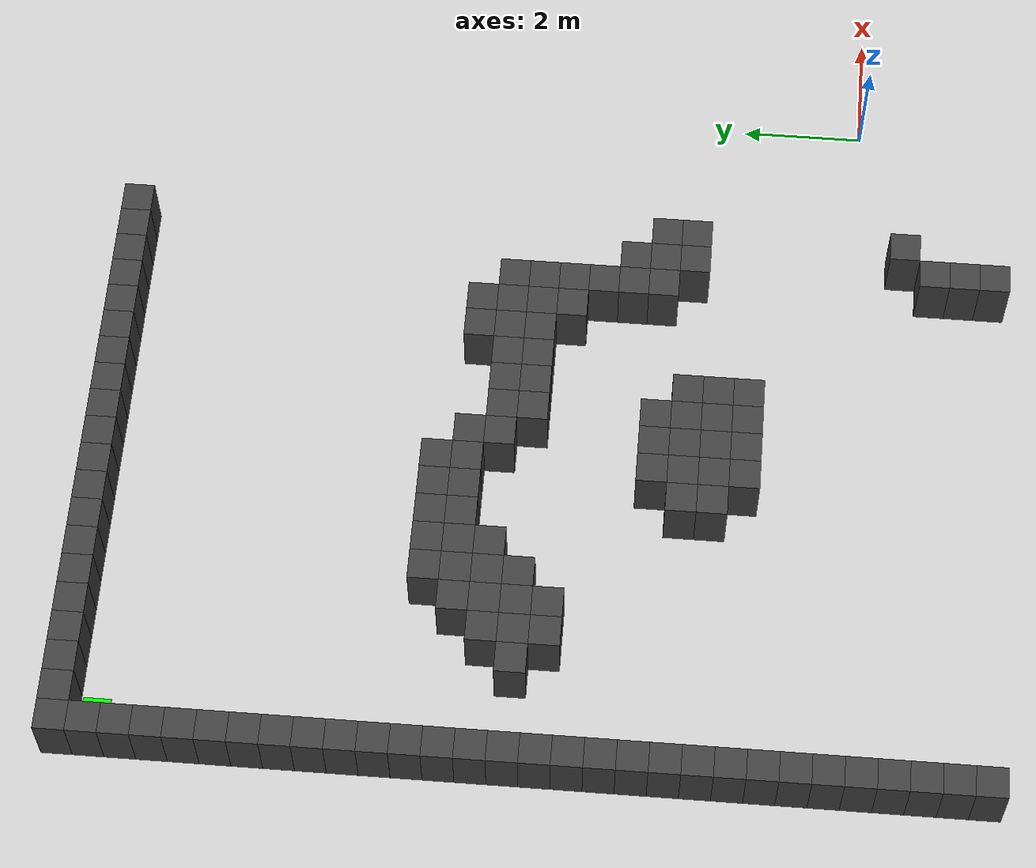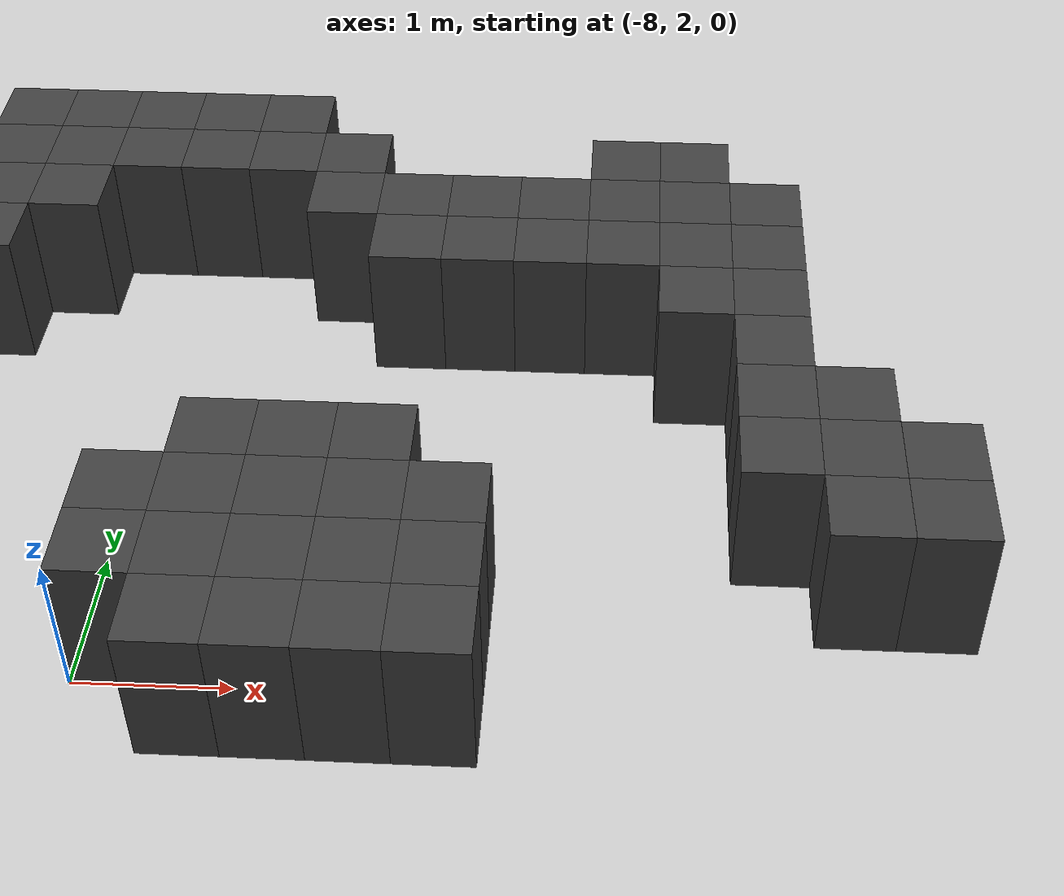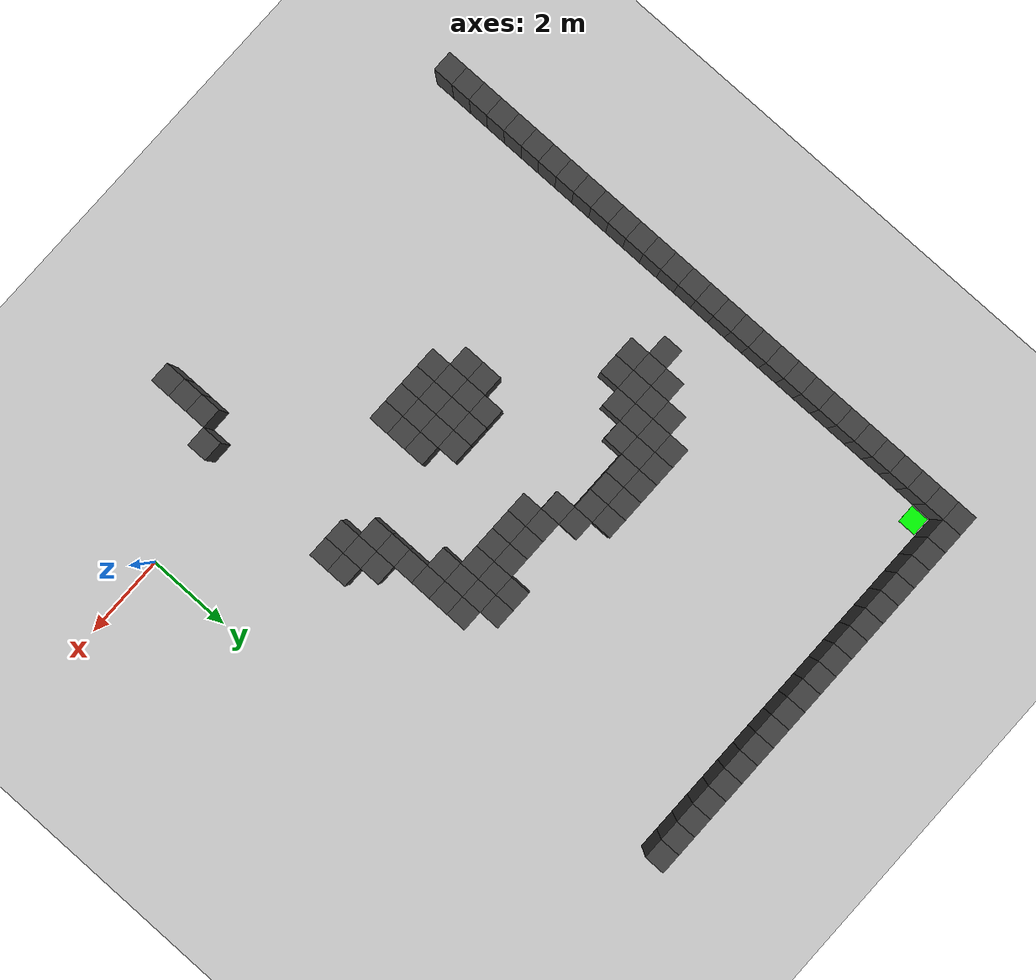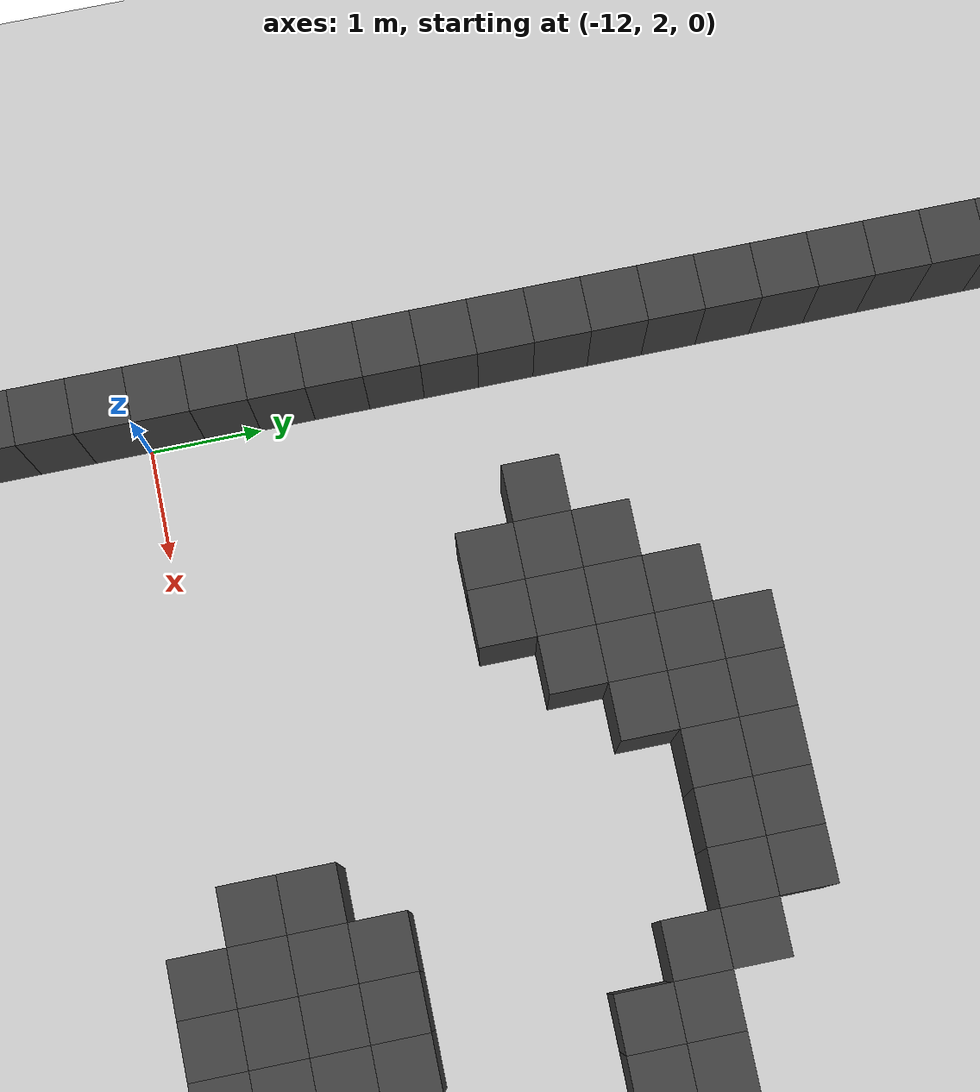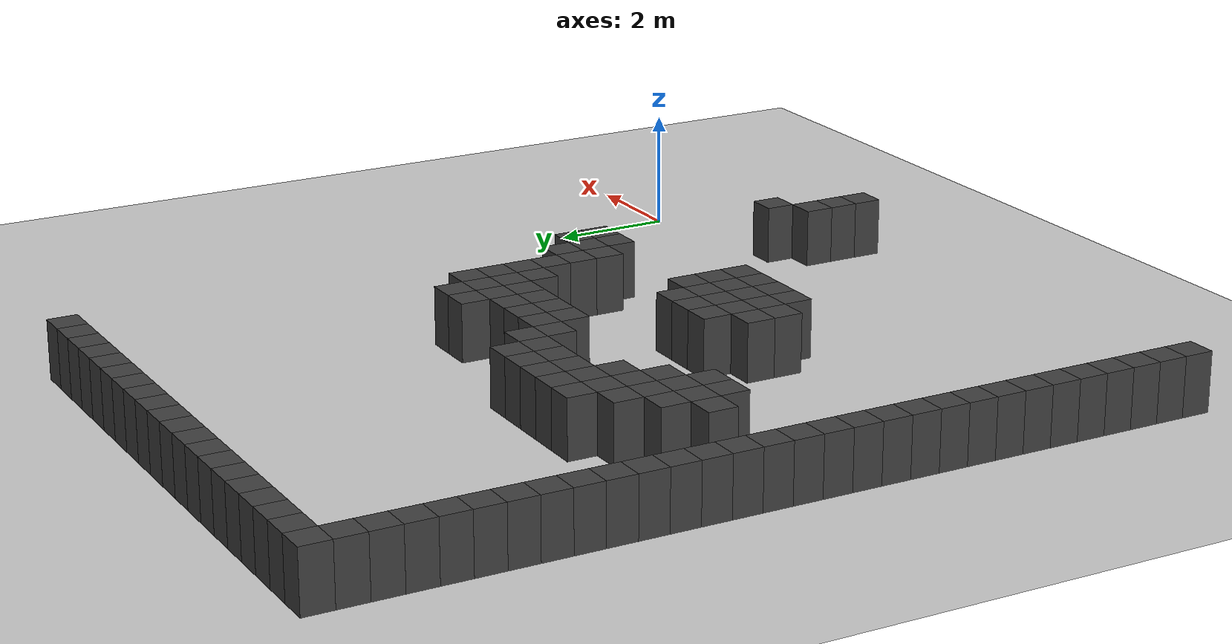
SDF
<sdf version="1.7">
 <world name="map_6610">
  <model name="ground_plane">
   <static>true</static>
   <link name="link">
    <collision name="collision">
     <geometry><plane><normal>0 0 1</normal><size>200 200</size></plane></geometry>
    </collision>
    <visual name="visual">
     <geometry><plane><normal>0 0 1</normal><size>200 200</size></plane></geometry>
     <material><ambient>0.8 0.8 0.8 1</ambient><diffuse>0.8 0.8 0.8 1</diffuse></material>
    </visual>
   </link>
  </model>
  <model name="maze_environment">
   <static>true</static>
   <link name="wall_0">
    <pose>-12.250 12.250 0.500 0 0 0</pose>
    <collision name="col"><geometry><box><size>0.5 0.5 1.0</size></box></geometry></collision>
    <visual name="vis">
     <geometry><box><size>0.5 0.5 1.0</size></box></geometry>
     <material><ambient>0.15 0.15 0.15 1</ambient><diffuse>0.25 0.25 0.25 1</diffuse></material>
    </visual>
   </link>
   <link name="wall_1">
    <pose>-11.750 12.250 0.500 0 0 0</pose>
    <collision name="col"><geometry><box><size>0.5 0.5 1.0</size></box></geometry></collision>
    <visual name="vis">
     <geometry><box><size>0.5 0.5 1.0</size></box></geometry>
     <material><ambient>0.15 0.15 0.15 1</ambient><diffuse>0.25 0.25 0.25 1</diffuse></material>
    </visual>
   </link>
   <link name="wall_2">
    <pose>-11.250 12.250 0.500 0 0 0</pose>
    <collision name="col"><geometry><box><size>0.5 0.5 1.0</size></box></geometry></collision>
    <visual name="vis">
     <geometry><box><size>0.5 0.5 1.0</size></box></geometry>
     <material><ambient>0.15 0.15 0.15 1</ambient><diffuse>0.25 0.25 0.25 1</diffuse></material>
    </visual>
   </link>
   <link name="wall_3">
    <pose>-10.750 12.250 0.500 0 0 0</pose>
    <collision name="col"><geometry><box><size>0.5 0.5 1.0</size></box></geometry></collision>
    <visual name="vis">
     <geometry><box><size>0.5 0.5 1.0</size></box></geometry>
     <material><ambient>0.15 0.15 0.15 1</ambient><diffuse>0.25 0.25 0.25 1</diffuse></material>
    </visual>
   </link>
   <link name="wall_4">
    <pose>-10.250 12.250 0.500 0 0 0</pose>
    <collision name="col"><geometry><box><size>0.5 0.5 1.0</size></box></geometry></collision>
    <visual name="vis">
     <geometry><box><size>0.5 0.5 1.0</size></box></geometry>
     <material><ambient>0.15 0.15 0.15 1</ambient><diffuse>0.25 0.25 0.25 1</diffuse></material>
    </visual>
   </link>
   <link name="wall_5">
    <pose>-9.750 12.250 0.500 0 0 0</pose>
    <collision name="col"><geometry><box><size>0.5 0.5 1.0</size></box></geometry></collision>
    <visual name="vis">
     <geometry><box><size>0.5 0.5 1.0</size></box></geometry>
     <material><ambient>0.15 0.15 0.15 1</ambient><diffuse>0.25 0.25 0.25 1</diffuse></material>
    </visual>
   </link>
   <link name="wall_6">
    <pose>-9.250 12.250 0.500 0 0 0</pose>
    <collision name="col"><geometry><box><size>0.5 0.5 1.0</size></box></geometry></collision>
    <visual name="vis">
     <geometry><box><size>0.5 0.5 1.0</size></box></geometry>
     <material><ambient>0.15 0.15 0.15 1</ambient><diffuse>0.25 0.25 0.25 1</diffuse></material>
    </visual>
   </link>
   <link name="wall_7">
    <pose>-8.750 12.250 0.500 0 0 0</pose>
    <collision name="col"><geometry><box><size>0.5 0.5 1.0</size></box></geometry></collision>
    <visual name="vis">
     <geometry><box><size>0.5 0.5 1.0</size></box></geometry>
     <material><ambient>0.15 0.15 0.15 1</ambient><diffuse>0.25 0.25 0.25 1</diffuse></material>
    </visual>
   </link>
   <link name="wall_8">
    <pose>-8.250 12.250 0.500 0 0 0</pose>
    <collision name="col"><geometry><box><size>0.5 0.5 1.0</size></box></geometry></collision>
    <visual name="vis">
     <geometry><box><size>0.5 0.5 1.0</size></box></geometry>
     <material><ambient>0.15 0.15 0.15 1</ambient><diffuse>0.25 0.25 0.25 1</diffuse></material>
    </visual>
   </link>
   <link name="wall_9">
    <pose>-7.750 12.250 0.500 0 0 0</pose>
    <collision name="col"><geometry><box><size>0.5 0.5 1.0</size></box></geometry></collision>
    <visual name="vis">
     <geometry><box><size>0.5 0.5 1.0</size></box></geometry>
     <material><ambient>0.15 0.15 0.15 1</ambient><diffuse>0.25 0.25 0.25 1</diffuse></material>
    </visual>
   </link>
   <link name="wall_10">
    <pose>-7.250 12.250 0.500 0 0 0</pose>
    <collision name="col"><geometry><box><size>0.5 0.5 1.0</size></box></geometry></collision>
    <visual name="vis">
     <geometry><box><size>0.5 0.5 1.0</size></box></geometry>
     <material><ambient>0.15 0.15 0.15 1</ambient><diffuse>0.25 0.25 0.25 1</diffuse></material>
    </visual>
   </link>
   <link name="wall_11">
    <pose>-6.750 12.250 0.500 0 0 0</pose>
    <collision name="col"><geometry><box><size>0.5 0.5 1.0</size></box></geometry></collision>
    <visual name="vis">
     <geometry><box><size>0.5 0.5 1.0</size></box></geometry>
     <material><ambient>0.15 0.15 0.15 1</ambient><diffuse>0.25 0.25 0.25 1</diffuse></material>
    </visual>
   </link>
   <link name="wall_12">
    <pose>-6.250 12.250 0.500 0 0 0</pose>
    <collision name="col"><geometry><box><size>0.5 0.5 1.0</size></box></geometry></collision>
    <visual name="vis">
     <geometry><box><size>0.5 0.5 1.0</size></box></geometry>
     <material><ambient>0.15 0.15 0.15 1</ambient><diffuse>0.25 0.25 0.25 1</diffuse></material>
    </visual>
   </link>
   <link name="wall_13">
    <pose>-5.750 12.250 0.500 0 0 0</pose>
    <collision name="col"><geometry><box><size>0.5 0.5 1.0</size></box></geometry></collision>
    <visual name="vis">
     <geometry><box><size>0.5 0.5 1.0</size></box></geometry>
     <material><ambient>0.15 0.15 0.15 1</ambient><diffuse>0.25 0.25 0.25 1</diffuse></material>
    </visual>
   </link>
   <link name="wall_14">
    <pose>-5.250 12.250 0.500 0 0 0</pose>
    <collision name="col"><geometry><box><size>0.5 0.5 1.0</size></box></geometry></collision>
    <visual name="vis">
     <geometry><box><size>0.5 0.5 1.0</size></box></geometry>
     <material><ambient>0.15 0.15 0.15 1</ambient><diffuse>0.25 0.25 0.25 1</diffuse></material>
    </visual>
   </link>
   <link name="wall_15">
    <pose>-4.750 12.250 0.500 0 0 0</pose>
    <collision name="col"><geometry><box><size>0.5 0.5 1.0</size></box></geometry></collision>
    <visual name="vis">
     <geometry><box><size>0.5 0.5 1.0</size></box></geometry>
     <material><ambient>0.15 0.15 0.15 1</ambient><diffuse>0.25 0.25 0.25 1</diffuse></material>
    </visual>
   </link>
   <link name="wall_16">
    <pose>-4.250 12.250 0.500 0 0 0</pose>
    <collision name="col"><geometry><box><size>0.5 0.5 1.0</size></box></geometry></collision>
    <visual name="vis">
     <geometry><box><size>0.5 0.5 1.0</size></box></geometry>
     <material><ambient>0.15 0.15 0.15 1</ambient><diffuse>0.25 0.25 0.25 1</diffuse></material>
    </visual>
   </link>
   <link name="wall_17">
    <pose>-3.750 12.250 0.500 0 0 0</pose>
    <collision name="col"><geometry><box><size>0.5 0.5 1.0</size></box></geometry></collision>
    <visual name="vis">
     <geometry><box><size>0.5 0.5 1.0</size></box></geometry>
     <material><ambient>0.15 0.15 0.15 1</ambient><diffuse>0.25 0.25 0.25 1</diffuse></material>
    </visual>
   </link>
   <link name="wall_18">
    <pose>-3.250 12.250 0.500 0 0 0</pose>
    <collision name="col"><geometry><box><size>0.5 0.5 1.0</size></box></geometry></collision>
    <visual name="vis">
     <geometry><box><size>0.5 0.5 1.0</size></box></geometry>
     <material><ambient>0.15 0.15 0.15 1</ambient><diffuse>0.25 0.25 0.25 1</diffuse></material>
    </visual>
   </link>
   <link name="wall_19">
    <pose>-2.750 12.250 0.500 0 0 0</pose>
    <collision name="col"><geometry><box><size>0.5 0.5 1.0</size></box></geometry></collision>
    <visual name="vis">
     <geometry><box><size>0.5 0.5 1.0</size></box></geometry>
     <material><ambient>0.15 0.15 0.15 1</ambient><diffuse>0.25 0.25 0.25 1</diffuse></material>
    </visual>
   </link>
   <link name="wall_50">
    <pose>-12.250 11.750 0.500 0 0 0</pose>
    <collision name="col"><geometry><box><size>0.5 0.5 1.0</size></box></geometry></collision>
    <visual name="vis">
     <geometry><box><size>0.5 0.5 1.0</size></box></geometry>
     <material><ambient>0.15 0.15 0.15 1</ambient><diffuse>0.25 0.25 0.25 1</diffuse></material>
    </visual>
   </link>
   <link name="wall_66">
    <pose>-12.250 11.250 0.500 0 0 0</pose>
    <collision name="col"><geometry><box><size>0.5 0.5 1.0</size></box></geometry></collision>
    <visual name="vis">
     <geometry><box><size>0.5 0.5 1.0</size></box></geometry>
     <material><ambient>0.15 0.15 0.15 1</ambient><diffuse>0.25 0.25 0.25 1</diffuse></material>
    </visual>
   </link>
   <link name="wall_74">
    <pose>-12.250 10.750 0.500 0 0 0</pose>
    <collision name="col"><geometry><box><size>0.5 0.5 1.0</size></box></geometry></collision>
    <visual name="vis">
     <geometry><box><size>0.5 0.5 1.0</size></box></geometry>
     <material><ambient>0.15 0.15 0.15 1</ambient><diffuse>0.25 0.25 0.25 1</diffuse></material>
    </visual>
   </link>
   <link name="wall_80">
    <pose>-12.250 10.250 0.500 0 0 0</pose>
    <collision name="col"><geometry><box><size>0.5 0.5 1.0</size></box></geometry></collision>
    <visual name="vis">
     <geometry><box><size>0.5 0.5 1.0</size></box></geometry>
     <material><ambient>0.15 0.15 0.15 1</ambient><diffuse>0.25 0.25 0.25 1</diffuse></material>
    </visual>
   </link>
   <link name="wall_87">
    <pose>-12.250 9.750 0.500 0 0 0</pose>
    <collision name="col"><geometry><box><size>0.5 0.5 1.0</size></box></geometry></collision>
    <visual name="vis">
     <geometry><box><size>0.5 0.5 1.0</size></box></geometry>
     <material><ambient>0.15 0.15 0.15 1</ambient><diffuse>0.25 0.25 0.25 1</diffuse></material>
    </visual>
   </link>
   <link name="wall_94">
    <pose>-12.250 9.250 0.500 0 0 0</pose>
    <collision name="col"><geometry><box><size>0.5 0.5 1.0</size></box></geometry></collision>
    <visual name="vis">
     <geometry><box><size>0.5 0.5 1.0</size></box></geometry>
     <material><ambient>0.15 0.15 0.15 1</ambient><diffuse>0.25 0.25 0.25 1</diffuse></material>
    </visual>
   </link>
   <link name="wall_103">
    <pose>-12.250 8.750 0.500 0 0 0</pose>
    <collision name="col"><geometry><box><size>0.5 0.5 1.0</size></box></geometry></collision>
    <visual name="vis">
     <geometry><box><size>0.5 0.5 1.0</size></box></geometry>
     <material><ambient>0.15 0.15 0.15 1</ambient><diffuse>0.25 0.25 0.25 1</diffuse></material>
    </visual>
   </link>
   <link name="wall_112">
    <pose>-12.250 8.250 0.500 0 0 0</pose>
    <collision name="col"><geometry><box><size>0.5 0.5 1.0</size></box></geometry></collision>
    <visual name="vis">
     <geometry><box><size>0.5 0.5 1.0</size></box></geometry>
     <material><ambient>0.15 0.15 0.15 1</ambient><diffuse>0.25 0.25 0.25 1</diffuse></material>
    </visual>
   </link>
   <link name="wall_118">
    <pose>-12.250 7.750 0.500 0 0 0</pose>
    <collision name="col"><geometry><box><size>0.5 0.5 1.0</size></box></geometry></collision>
    <visual name="vis">
     <geometry><box><size>0.5 0.5 1.0</size></box></geometry>
     <material><ambient>0.15 0.15 0.15 1</ambient><diffuse>0.25 0.25 0.25 1</diffuse></material>
    </visual>
   </link>
   <link name="wall_123">
    <pose>-12.250 7.250 0.500 0 0 0</pose>
    <collision name="col"><geometry><box><size>0.5 0.5 1.0</size></box></geometry></collision>
    <visual name="vis">
     <geometry><box><size>0.5 0.5 1.0</size></box></geometry>
     <material><ambient>0.15 0.15 0.15 1</ambient><diffuse>0.25 0.25 0.25 1</diffuse></material>
    </visual>
   </link>
   <link name="wall_125">
    <pose>-12.250 6.750 0.500 0 0 0</pose>
    <collision name="col"><geometry><box><size>0.5 0.5 1.0</size></box></geometry></collision>
    <visual name="vis">
     <geometry><box><size>0.5 0.5 1.0</size></box></geometry>
     <material><ambient>0.15 0.15 0.15 1</ambient><diffuse>0.25 0.25 0.25 1</diffuse></material>
    </visual>
   </link>
   <link name="wall_126">
    <pose>-9.250 6.750 0.500 0 0 0</pose>
    <collision name="col"><geometry><box><size>0.5 0.5 1.0</size></box></geometry></collision>
    <visual name="vis">
     <geometry><box><size>0.5 0.5 1.0</size></box></geometry>
     <material><ambient>0.15 0.15 0.15 1</ambient><diffuse>0.25 0.25 0.25 1</diffuse></material>
    </visual>
   </link>
   <link name="wall_127">
    <pose>-8.750 6.750 0.500 0 0 0</pose>
    <collision name="col"><geometry><box><size>0.5 0.5 1.0</size></box></geometry></collision>
    <visual name="vis">
     <geometry><box><size>0.5 0.5 1.0</size></box></geometry>
     <material><ambient>0.15 0.15 0.15 1</ambient><diffuse>0.25 0.25 0.25 1</diffuse></material>
    </visual>
   </link>
   <link name="wall_128">
    <pose>-8.250 6.750 0.500 0 0 0</pose>
    <collision name="col"><geometry><box><size>0.5 0.5 1.0</size></box></geometry></collision>
    <visual name="vis">
     <geometry><box><size>0.5 0.5 1.0</size></box></geometry>
     <material><ambient>0.15 0.15 0.15 1</ambient><diffuse>0.25 0.25 0.25 1</diffuse></material>
    </visual>
   </link>
   <link name="wall_129">
    <pose>-7.750 6.750 0.500 0 0 0</pose>
    <collision name="col"><geometry><box><size>0.5 0.5 1.0</size></box></geometry></collision>
    <visual name="vis">
     <geometry><box><size>0.5 0.5 1.0</size></box></geometry>
     <material><ambient>0.15 0.15 0.15 1</ambient><diffuse>0.25 0.25 0.25 1</diffuse></material>
    </visual>
   </link>
   <link name="wall_130">
    <pose>-7.250 6.750 0.500 0 0 0</pose>
    <collision name="col"><geometry><box><size>0.5 0.5 1.0</size></box></geometry></collision>
    <visual name="vis">
     <geometry><box><size>0.5 0.5 1.0</size></box></geometry>
     <material><ambient>0.15 0.15 0.15 1</ambient><diffuse>0.25 0.25 0.25 1</diffuse></material>
    </visual>
   </link>
   <link name="wall_132">
    <pose>-12.250 6.250 0.500 0 0 0</pose>
    <collision name="col"><geometry><box><size>0.5 0.5 1.0</size></box></geometry></collision>
    <visual name="vis">
     <geometry><box><size>0.5 0.5 1.0</size></box></geometry>
     <material><ambient>0.15 0.15 0.15 1</ambient><diffuse>0.25 0.25 0.25 1</diffuse></material>
    </visual>
   </link>
   <link name="wall_133">
    <pose>-9.750 6.250 0.500 0 0 0</pose>
    <collision name="col"><geometry><box><size>0.5 0.5 1.0</size></box></geometry></collision>
    <visual name="vis">
     <geometry><box><size>0.5 0.5 1.0</size></box></geometry>
     <material><ambient>0.15 0.15 0.15 1</ambient><diffuse>0.25 0.25 0.25 1</diffuse></material>
    </visual>
   </link>
   <link name="wall_134">
    <pose>-9.250 6.250 0.500 0 0 0</pose>
    <collision name="col"><geometry><box><size>0.5 0.5 1.0</size></box></geometry></collision>
    <visual name="vis">
     <geometry><box><size>0.5 0.5 1.0</size></box></geometry>
     <material><ambient>0.15 0.15 0.15 1</ambient><diffuse>0.25 0.25 0.25 1</diffuse></material>
    </visual>
   </link>
   <link name="wall_135">
    <pose>-8.750 6.250 0.500 0 0 0</pose>
    <collision name="col"><geometry><box><size>0.5 0.5 1.0</size></box></geometry></collision>
    <visual name="vis">
     <geometry><box><size>0.5 0.5 1.0</size></box></geometry>
     <material><ambient>0.15 0.15 0.15 1</ambient><diffuse>0.25 0.25 0.25 1</diffuse></material>
    </visual>
   </link>
   <link name="wall_136">
    <pose>-8.250 6.250 0.500 0 0 0</pose>
    <collision name="col"><geometry><box><size>0.5 0.5 1.0</size></box></geometry></collision>
    <visual name="vis">
     <geometry><box><size>0.5 0.5 1.0</size></box></geometry>
     <material><ambient>0.15 0.15 0.15 1</ambient><diffuse>0.25 0.25 0.25 1</diffuse></material>
    </visual>
   </link>
   <link name="wall_137">
    <pose>-7.750 6.250 0.500 0 0 0</pose>
    <collision name="col"><geometry><box><size>0.5 0.5 1.0</size></box></geometry></collision>
    <visual name="vis">
     <geometry><box><size>0.5 0.5 1.0</size></box></geometry>
     <material><ambient>0.15 0.15 0.15 1</ambient><diffuse>0.25 0.25 0.25 1</diffuse></material>
    </visual>
   </link>
   <link name="wall_138">
    <pose>-7.250 6.250 0.500 0 0 0</pose>
    <collision name="col"><geometry><box><size>0.5 0.5 1.0</size></box></geometry></collision>
    <visual name="vis">
     <geometry><box><size>0.5 0.5 1.0</size></box></geometry>
     <material><ambient>0.15 0.15 0.15 1</ambient><diffuse>0.25 0.25 0.25 1</diffuse></material>
    </visual>
   </link>
   <link name="wall_139">
    <pose>-6.750 6.250 0.500 0 0 0</pose>
    <collision name="col"><geometry><box><size>0.5 0.5 1.0</size></box></geometry></collision>
    <visual name="vis">
     <geometry><box><size>0.5 0.5 1.0</size></box></geometry>
     <material><ambient>0.15 0.15 0.15 1</ambient><diffuse>0.25 0.25 0.25 1</diffuse></material>
    </visual>
   </link>
   <link name="wall_140">
    <pose>-4.750 6.250 0.500 0 0 0</pose>
    <collision name="col"><geometry><box><size>0.5 0.5 1.0</size></box></geometry></collision>
    <visual name="vis">
     <geometry><box><size>0.5 0.5 1.0</size></box></geometry>
     <material><ambient>0.15 0.15 0.15 1</ambient><diffuse>0.25 0.25 0.25 1</diffuse></material>
    </visual>
   </link>
   <link name="wall_141">
    <pose>-4.250 6.250 0.500 0 0 0</pose>
    <collision name="col"><geometry><box><size>0.5 0.5 1.0</size></box></geometry></collision>
    <visual name="vis">
     <geometry><box><size>0.5 0.5 1.0</size></box></geometry>
     <material><ambient>0.15 0.15 0.15 1</ambient><diffuse>0.25 0.25 0.25 1</diffuse></material>
    </visual>
   </link>
   <link name="wall_146">
    <pose>-12.250 5.750 0.500 0 0 0</pose>
    <collision name="col"><geometry><box><size>0.5 0.5 1.0</size></box></geometry></collision>
    <visual name="vis">
     <geometry><box><size>0.5 0.5 1.0</size></box></geometry>
     <material><ambient>0.15 0.15 0.15 1</ambient><diffuse>0.25 0.25 0.25 1</diffuse></material>
    </visual>
   </link>
   <link name="wall_147">
    <pose>-10.250 5.750 0.500 0 0 0</pose>
    <collision name="col"><geometry><box><size>0.5 0.5 1.0</size></box></geometry></collision>
    <visual name="vis">
     <geometry><box><size>0.5 0.5 1.0</size></box></geometry>
     <material><ambient>0.15 0.15 0.15 1</ambient><diffuse>0.25 0.25 0.25 1</diffuse></material>
    </visual>
   </link>
   <link name="wall_148">
    <pose>-9.750 5.750 0.500 0 0 0</pose>
    <collision name="col"><geometry><box><size>0.5 0.5 1.0</size></box></geometry></collision>
    <visual name="vis">
     <geometry><box><size>0.5 0.5 1.0</size></box></geometry>
     <material><ambient>0.15 0.15 0.15 1</ambient><diffuse>0.25 0.25 0.25 1</diffuse></material>
    </visual>
   </link>
   <link name="wall_149">
    <pose>-9.250 5.750 0.500 0 0 0</pose>
    <collision name="col"><geometry><box><size>0.5 0.5 1.0</size></box></geometry></collision>
    <visual name="vis">
     <geometry><box><size>0.5 0.5 1.0</size></box></geometry>
     <material><ambient>0.15 0.15 0.15 1</ambient><diffuse>0.25 0.25 0.25 1</diffuse></material>
    </visual>
   </link>
   <link name="wall_150">
    <pose>-8.750 5.750 0.500 0 0 0</pose>
    <collision name="col"><geometry><box><size>0.5 0.5 1.0</size></box></geometry></collision>
    <visual name="vis">
     <geometry><box><size>0.5 0.5 1.0</size></box></geometry>
     <material><ambient>0.15 0.15 0.15 1</ambient><diffuse>0.25 0.25 0.25 1</diffuse></material>
    </visual>
   </link>
   <link name="wall_151">
    <pose>-6.750 5.750 0.500 0 0 0</pose>
    <collision name="col"><geometry><box><size>0.5 0.5 1.0</size></box></geometry></collision>
    <visual name="vis">
     <geometry><box><size>0.5 0.5 1.0</size></box></geometry>
     <material><ambient>0.15 0.15 0.15 1</ambient><diffuse>0.25 0.25 0.25 1</diffuse></material>
    </visual>
   </link>
   <link name="wall_152">
    <pose>-6.250 5.750 0.500 0 0 0</pose>
    <collision name="col"><geometry><box><size>0.5 0.5 1.0</size></box></geometry></collision>
    <visual name="vis">
     <geometry><box><size>0.5 0.5 1.0</size></box></geometry>
     <material><ambient>0.15 0.15 0.15 1</ambient><diffuse>0.25 0.25 0.25 1</diffuse></material>
    </visual>
   </link>
   <link name="wall_153">
    <pose>-5.750 5.750 0.500 0 0 0</pose>
    <collision name="col"><geometry><box><size>0.5 0.5 1.0</size></box></geometry></collision>
    <visual name="vis">
     <geometry><box><size>0.5 0.5 1.0</size></box></geometry>
     <material><ambient>0.15 0.15 0.15 1</ambient><diffuse>0.25 0.25 0.25 1</diffuse></material>
    </visual>
   </link>
   <link name="wall_154">
    <pose>-5.250 5.750 0.500 0 0 0</pose>
    <collision name="col"><geometry><box><size>0.5 0.5 1.0</size></box></geometry></collision>
    <visual name="vis">
     <geometry><box><size>0.5 0.5 1.0</size></box></geometry>
     <material><ambient>0.15 0.15 0.15 1</ambient><diffuse>0.25 0.25 0.25 1</diffuse></material>
    </visual>
   </link>
   <link name="wall_155">
    <pose>-4.750 5.750 0.500 0 0 0</pose>
    <collision name="col"><geometry><box><size>0.5 0.5 1.0</size></box></geometry></collision>
    <visual name="vis">
     <geometry><box><size>0.5 0.5 1.0</size></box></geometry>
     <material><ambient>0.15 0.15 0.15 1</ambient><diffuse>0.25 0.25 0.25 1</diffuse></material>
    </visual>
   </link>
   <link name="wall_156">
    <pose>-4.250 5.750 0.500 0 0 0</pose>
    <collision name="col"><geometry><box><size>0.5 0.5 1.0</size></box></geometry></collision>
    <visual name="vis">
     <geometry><box><size>0.5 0.5 1.0</size></box></geometry>
     <material><ambient>0.15 0.15 0.15 1</ambient><diffuse>0.25 0.25 0.25 1</diffuse></material>
    </visual>
   </link>
   <link name="wall_157">
    <pose>-3.750 5.750 0.500 0 0 0</pose>
    <collision name="col"><geometry><box><size>0.5 0.5 1.0</size></box></geometry></collision>
    <visual name="vis">
     <geometry><box><size>0.5 0.5 1.0</size></box></geometry>
     <material><ambient>0.15 0.15 0.15 1</ambient><diffuse>0.25 0.25 0.25 1</diffuse></material>
    </visual>
   </link>
   <link name="wall_163">
    <pose>-12.250 5.250 0.500 0 0 0</pose>
    <collision name="col"><geometry><box><size>0.5 0.5 1.0</size></box></geometry></collision>
    <visual name="vis">
     <geometry><box><size>0.5 0.5 1.0</size></box></geometry>
     <material><ambient>0.15 0.15 0.15 1</ambient><diffuse>0.25 0.25 0.25 1</diffuse></material>
    </visual>
   </link>
   <link name="wall_164">
    <pose>-10.750 5.250 0.500 0 0 0</pose>
    <collision name="col"><geometry><box><size>0.5 0.5 1.0</size></box></geometry></collision>
    <visual name="vis">
     <geometry><box><size>0.5 0.5 1.0</size></box></geometry>
     <material><ambient>0.15 0.15 0.15 1</ambient><diffuse>0.25 0.25 0.25 1</diffuse></material>
    </visual>
   </link>
   <link name="wall_165">
    <pose>-10.250 5.250 0.500 0 0 0</pose>
    <collision name="col"><geometry><box><size>0.5 0.5 1.0</size></box></geometry></collision>
    <visual name="vis">
     <geometry><box><size>0.5 0.5 1.0</size></box></geometry>
     <material><ambient>0.15 0.15 0.15 1</ambient><diffuse>0.25 0.25 0.25 1</diffuse></material>
    </visual>
   </link>
   <link name="wall_166">
    <pose>-9.750 5.250 0.500 0 0 0</pose>
    <collision name="col"><geometry><box><size>0.5 0.5 1.0</size></box></geometry></collision>
    <visual name="vis">
     <geometry><box><size>0.5 0.5 1.0</size></box></geometry>
     <material><ambient>0.15 0.15 0.15 1</ambient><diffuse>0.25 0.25 0.25 1</diffuse></material>
    </visual>
   </link>
   <link name="wall_167">
    <pose>-9.250 5.250 0.500 0 0 0</pose>
    <collision name="col"><geometry><box><size>0.5 0.5 1.0</size></box></geometry></collision>
    <visual name="vis">
     <geometry><box><size>0.5 0.5 1.0</size></box></geometry>
     <material><ambient>0.15 0.15 0.15 1</ambient><diffuse>0.25 0.25 0.25 1</diffuse></material>
    </visual>
   </link>
   <link name="wall_168">
    <pose>-6.250 5.250 0.500 0 0 0</pose>
    <collision name="col"><geometry><box><size>0.5 0.5 1.0</size></box></geometry></collision>
    <visual name="vis">
     <geometry><box><size>0.5 0.5 1.0</size></box></geometry>
     <material><ambient>0.15 0.15 0.15 1</ambient><diffuse>0.25 0.25 0.25 1</diffuse></material>
    </visual>
   </link>
   <link name="wall_169">
    <pose>-5.750 5.250 0.500 0 0 0</pose>
    <collision name="col"><geometry><box><size>0.5 0.5 1.0</size></box></geometry></collision>
    <visual name="vis">
     <geometry><box><size>0.5 0.5 1.0</size></box></geometry>
     <material><ambient>0.15 0.15 0.15 1</ambient><diffuse>0.25 0.25 0.25 1</diffuse></material>
    </visual>
   </link>
   <link name="wall_170">
    <pose>-5.250 5.250 0.500 0 0 0</pose>
    <collision name="col"><geometry><box><size>0.5 0.5 1.0</size></box></geometry></collision>
    <visual name="vis">
     <geometry><box><size>0.5 0.5 1.0</size></box></geometry>
     <material><ambient>0.15 0.15 0.15 1</ambient><diffuse>0.25 0.25 0.25 1</diffuse></material>
    </visual>
   </link>
   <link name="wall_171">
    <pose>-4.750 5.250 0.500 0 0 0</pose>
    <collision name="col"><geometry><box><size>0.5 0.5 1.0</size></box></geometry></collision>
    <visual name="vis">
     <geometry><box><size>0.5 0.5 1.0</size></box></geometry>
     <material><ambient>0.15 0.15 0.15 1</ambient><diffuse>0.25 0.25 0.25 1</diffuse></material>
    </visual>
   </link>
   <link name="wall_172">
    <pose>-4.250 5.250 0.500 0 0 0</pose>
    <collision name="col"><geometry><box><size>0.5 0.5 1.0</size></box></geometry></collision>
    <visual name="vis">
     <geometry><box><size>0.5 0.5 1.0</size></box></geometry>
     <material><ambient>0.15 0.15 0.15 1</ambient><diffuse>0.25 0.25 0.25 1</diffuse></material>
    </visual>
   </link>
   <link name="wall_173">
    <pose>-3.750 5.250 0.500 0 0 0</pose>
    <collision name="col"><geometry><box><size>0.5 0.5 1.0</size></box></geometry></collision>
    <visual name="vis">
     <geometry><box><size>0.5 0.5 1.0</size></box></geometry>
     <material><ambient>0.15 0.15 0.15 1</ambient><diffuse>0.25 0.25 0.25 1</diffuse></material>
    </visual>
   </link>
   <link name="wall_179">
    <pose>-12.250 4.750 0.500 0 0 0</pose>
    <collision name="col"><geometry><box><size>0.5 0.5 1.0</size></box></geometry></collision>
    <visual name="vis">
     <geometry><box><size>0.5 0.5 1.0</size></box></geometry>
     <material><ambient>0.15 0.15 0.15 1</ambient><diffuse>0.25 0.25 0.25 1</diffuse></material>
    </visual>
   </link>
   <link name="wall_180">
    <pose>-10.250 4.750 0.500 0 0 0</pose>
    <collision name="col"><geometry><box><size>0.5 0.5 1.0</size></box></geometry></collision>
    <visual name="vis">
     <geometry><box><size>0.5 0.5 1.0</size></box></geometry>
     <material><ambient>0.15 0.15 0.15 1</ambient><diffuse>0.25 0.25 0.25 1</diffuse></material>
    </visual>
   </link>
   <link name="wall_181">
    <pose>-9.750 4.750 0.500 0 0 0</pose>
    <collision name="col"><geometry><box><size>0.5 0.5 1.0</size></box></geometry></collision>
    <visual name="vis">
     <geometry><box><size>0.5 0.5 1.0</size></box></geometry>
     <material><ambient>0.15 0.15 0.15 1</ambient><diffuse>0.25 0.25 0.25 1</diffuse></material>
    </visual>
   </link>
   <link name="wall_182">
    <pose>-4.250 4.750 0.500 0 0 0</pose>
    <collision name="col"><geometry><box><size>0.5 0.5 1.0</size></box></geometry></collision>
    <visual name="vis">
     <geometry><box><size>0.5 0.5 1.0</size></box></geometry>
     <material><ambient>0.15 0.15 0.15 1</ambient><diffuse>0.25 0.25 0.25 1</diffuse></material>
    </visual>
   </link>
   <link name="wall_183">
    <pose>-3.750 4.750 0.500 0 0 0</pose>
    <collision name="col"><geometry><box><size>0.5 0.5 1.0</size></box></geometry></collision>
    <visual name="vis">
     <geometry><box><size>0.5 0.5 1.0</size></box></geometry>
     <material><ambient>0.15 0.15 0.15 1</ambient><diffuse>0.25 0.25 0.25 1</diffuse></material>
    </visual>
   </link>
   <link name="wall_188">
    <pose>-12.250 4.250 0.500 0 0 0</pose>
    <collision name="col"><geometry><box><size>0.5 0.5 1.0</size></box></geometry></collision>
    <visual name="vis">
     <geometry><box><size>0.5 0.5 1.0</size></box></geometry>
     <material><ambient>0.15 0.15 0.15 1</ambient><diffuse>0.25 0.25 0.25 1</diffuse></material>
    </visual>
   </link>
   <link name="wall_189">
    <pose>-3.750 4.250 0.500 0 0 0</pose>
    <collision name="col"><geometry><box><size>0.5 0.5 1.0</size></box></geometry></collision>
    <visual name="vis">
     <geometry><box><size>0.5 0.5 1.0</size></box></geometry>
     <material><ambient>0.15 0.15 0.15 1</ambient><diffuse>0.25 0.25 0.25 1</diffuse></material>
    </visual>
   </link>
   <link name="wall_193">
    <pose>-12.250 3.750 0.500 0 0 0</pose>
    <collision name="col"><geometry><box><size>0.5 0.5 1.0</size></box></geometry></collision>
    <visual name="vis">
     <geometry><box><size>0.5 0.5 1.0</size></box></geometry>
     <material><ambient>0.15 0.15 0.15 1</ambient><diffuse>0.25 0.25 0.25 1</diffuse></material>
    </visual>
   </link>
   <link name="wall_194">
    <pose>-3.750 3.750 0.500 0 0 0</pose>
    <collision name="col"><geometry><box><size>0.5 0.5 1.0</size></box></geometry></collision>
    <visual name="vis">
     <geometry><box><size>0.5 0.5 1.0</size></box></geometry>
     <material><ambient>0.15 0.15 0.15 1</ambient><diffuse>0.25 0.25 0.25 1</diffuse></material>
    </visual>
   </link>
   <link name="wall_195">
    <pose>-3.250 3.750 0.500 0 0 0</pose>
    <collision name="col"><geometry><box><size>0.5 0.5 1.0</size></box></geometry></collision>
    <visual name="vis">
     <geometry><box><size>0.5 0.5 1.0</size></box></geometry>
     <material><ambient>0.15 0.15 0.15 1</ambient><diffuse>0.25 0.25 0.25 1</diffuse></material>
    </visual>
   </link>
   <link name="wall_202">
    <pose>-12.250 3.250 0.500 0 0 0</pose>
    <collision name="col"><geometry><box><size>0.5 0.5 1.0</size></box></geometry></collision>
    <visual name="vis">
     <geometry><box><size>0.5 0.5 1.0</size></box></geometry>
     <material><ambient>0.15 0.15 0.15 1</ambient><diffuse>0.25 0.25 0.25 1</diffuse></material>
    </visual>
   </link>
   <link name="wall_203">
    <pose>-7.250 3.250 0.500 0 0 0</pose>
    <collision name="col"><geometry><box><size>0.5 0.5 1.0</size></box></geometry></collision>
    <visual name="vis">
     <geometry><box><size>0.5 0.5 1.0</size></box></geometry>
     <material><ambient>0.15 0.15 0.15 1</ambient><diffuse>0.25 0.25 0.25 1</diffuse></material>
    </visual>
   </link>
   <link name="wall_204">
    <pose>-6.750 3.250 0.500 0 0 0</pose>
    <collision name="col"><geometry><box><size>0.5 0.5 1.0</size></box></geometry></collision>
    <visual name="vis">
     <geometry><box><size>0.5 0.5 1.0</size></box></geometry>
     <material><ambient>0.15 0.15 0.15 1</ambient><diffuse>0.25 0.25 0.25 1</diffuse></material>
    </visual>
   </link>
   <link name="wall_205">
    <pose>-6.250 3.250 0.500 0 0 0</pose>
    <collision name="col"><geometry><box><size>0.5 0.5 1.0</size></box></geometry></collision>
    <visual name="vis">
     <geometry><box><size>0.5 0.5 1.0</size></box></geometry>
     <material><ambient>0.15 0.15 0.15 1</ambient><diffuse>0.25 0.25 0.25 1</diffuse></material>
    </visual>
   </link>
   <link name="wall_206">
    <pose>-3.750 3.250 0.500 0 0 0</pose>
    <collision name="col"><geometry><box><size>0.5 0.5 1.0</size></box></geometry></collision>
    <visual name="vis">
     <geometry><box><size>0.5 0.5 1.0</size></box></geometry>
     <material><ambient>0.15 0.15 0.15 1</ambient><diffuse>0.25 0.25 0.25 1</diffuse></material>
    </visual>
   </link>
   <link name="wall_207">
    <pose>-3.250 3.250 0.500 0 0 0</pose>
    <collision name="col"><geometry><box><size>0.5 0.5 1.0</size></box></geometry></collision>
    <visual name="vis">
     <geometry><box><size>0.5 0.5 1.0</size></box></geometry>
     <material><ambient>0.15 0.15 0.15 1</ambient><diffuse>0.25 0.25 0.25 1</diffuse></material>
    </visual>
   </link>
   <link name="wall_208">
    <pose>-2.750 3.250 0.500 0 0 0</pose>
    <collision name="col"><geometry><box><size>0.5 0.5 1.0</size></box></geometry></collision>
    <visual name="vis">
     <geometry><box><size>0.5 0.5 1.0</size></box></geometry>
     <material><ambient>0.15 0.15 0.15 1</ambient><diffuse>0.25 0.25 0.25 1</diffuse></material>
    </visual>
   </link>
   <link name="wall_216">
    <pose>-12.250 2.750 0.500 0 0 0</pose>
    <collision name="col"><geometry><box><size>0.5 0.5 1.0</size></box></geometry></collision>
    <visual name="vis">
     <geometry><box><size>0.5 0.5 1.0</size></box></geometry>
     <material><ambient>0.15 0.15 0.15 1</ambient><diffuse>0.25 0.25 0.25 1</diffuse></material>
    </visual>
   </link>
   <link name="wall_217">
    <pose>-7.750 2.750 0.500 0 0 0</pose>
    <collision name="col"><geometry><box><size>0.5 0.5 1.0</size></box></geometry></collision>
    <visual name="vis">
     <geometry><box><size>0.5 0.5 1.0</size></box></geometry>
     <material><ambient>0.15 0.15 0.15 1</ambient><diffuse>0.25 0.25 0.25 1</diffuse></material>
    </visual>
   </link>
   <link name="wall_218">
    <pose>-7.250 2.750 0.500 0 0 0</pose>
    <collision name="col"><geometry><box><size>0.5 0.5 1.0</size></box></geometry></collision>
    <visual name="vis">
     <geometry><box><size>0.5 0.5 1.0</size></box></geometry>
     <material><ambient>0.15 0.15 0.15 1</ambient><diffuse>0.25 0.25 0.25 1</diffuse></material>
    </visual>
   </link>
   <link name="wall_219">
    <pose>-6.750 2.750 0.500 0 0 0</pose>
    <collision name="col"><geometry><box><size>0.5 0.5 1.0</size></box></geometry></collision>
    <visual name="vis">
     <geometry><box><size>0.5 0.5 1.0</size></box></geometry>
     <material><ambient>0.15 0.15 0.15 1</ambient><diffuse>0.25 0.25 0.25 1</diffuse></material>
    </visual>
   </link>
   <link name="wall_220">
    <pose>-6.250 2.750 0.500 0 0 0</pose>
    <collision name="col"><geometry><box><size>0.5 0.5 1.0</size></box></geometry></collision>
    <visual name="vis">
     <geometry><box><size>0.5 0.5 1.0</size></box></geometry>
     <material><ambient>0.15 0.15 0.15 1</ambient><diffuse>0.25 0.25 0.25 1</diffuse></material>
    </visual>
   </link>
   <link name="wall_221">
    <pose>-5.750 2.750 0.500 0 0 0</pose>
    <collision name="col"><geometry><box><size>0.5 0.5 1.0</size></box></geometry></collision>
    <visual name="vis">
     <geometry><box><size>0.5 0.5 1.0</size></box></geometry>
     <material><ambient>0.15 0.15 0.15 1</ambient><diffuse>0.25 0.25 0.25 1</diffuse></material>
    </visual>
   </link>
   <link name="wall_222">
    <pose>-3.250 2.750 0.500 0 0 0</pose>
    <collision name="col"><geometry><box><size>0.5 0.5 1.0</size></box></geometry></collision>
    <visual name="vis">
     <geometry><box><size>0.5 0.5 1.0</size></box></geometry>
     <material><ambient>0.15 0.15 0.15 1</ambient><diffuse>0.25 0.25 0.25 1</diffuse></material>
    </visual>
   </link>
   <link name="wall_223">
    <pose>-2.750 2.750 0.500 0 0 0</pose>
    <collision name="col"><geometry><box><size>0.5 0.5 1.0</size></box></geometry></collision>
    <visual name="vis">
     <geometry><box><size>0.5 0.5 1.0</size></box></geometry>
     <material><ambient>0.15 0.15 0.15 1</ambient><diffuse>0.25 0.25 0.25 1</diffuse></material>
    </visual>
   </link>
   <link name="wall_234">
    <pose>-12.250 2.250 0.500 0 0 0</pose>
    <collision name="col"><geometry><box><size>0.5 0.5 1.0</size></box></geometry></collision>
    <visual name="vis">
     <geometry><box><size>0.5 0.5 1.0</size></box></geometry>
     <material><ambient>0.15 0.15 0.15 1</ambient><diffuse>0.25 0.25 0.25 1</diffuse></material>
    </visual>
   </link>
   <link name="wall_235">
    <pose>-7.750 2.250 0.500 0 0 0</pose>
    <collision name="col"><geometry><box><size>0.5 0.5 1.0</size></box></geometry></collision>
    <visual name="vis">
     <geometry><box><size>0.5 0.5 1.0</size></box></geometry>
     <material><ambient>0.15 0.15 0.15 1</ambient><diffuse>0.25 0.25 0.25 1</diffuse></material>
    </visual>
   </link>
   <link name="wall_236">
    <pose>-7.250 2.250 0.500 0 0 0</pose>
    <collision name="col"><geometry><box><size>0.5 0.5 1.0</size></box></geometry></collision>
    <visual name="vis">
     <geometry><box><size>0.5 0.5 1.0</size></box></geometry>
     <material><ambient>0.15 0.15 0.15 1</ambient><diffuse>0.25 0.25 0.25 1</diffuse></material>
    </visual>
   </link>
   <link name="wall_237">
    <pose>-6.750 2.250 0.500 0 0 0</pose>
    <collision name="col"><geometry><box><size>0.5 0.5 1.0</size></box></geometry></collision>
    <visual name="vis">
     <geometry><box><size>0.5 0.5 1.0</size></box></geometry>
     <material><ambient>0.15 0.15 0.15 1</ambient><diffuse>0.25 0.25 0.25 1</diffuse></material>
    </visual>
   </link>
   <link name="wall_238">
    <pose>-6.250 2.250 0.500 0 0 0</pose>
    <collision name="col"><geometry><box><size>0.5 0.5 1.0</size></box></geometry></collision>
    <visual name="vis">
     <geometry><box><size>0.5 0.5 1.0</size></box></geometry>
     <material><ambient>0.15 0.15 0.15 1</ambient><diffuse>0.25 0.25 0.25 1</diffuse></material>
    </visual>
   </link>
   <link name="wall_239">
    <pose>-5.750 2.250 0.500 0 0 0</pose>
    <collision name="col"><geometry><box><size>0.5 0.5 1.0</size></box></geometry></collision>
    <visual name="vis">
     <geometry><box><size>0.5 0.5 1.0</size></box></geometry>
     <material><ambient>0.15 0.15 0.15 1</ambient><diffuse>0.25 0.25 0.25 1</diffuse></material>
    </visual>
   </link>
   <link name="wall_254">
    <pose>-12.250 1.750 0.500 0 0 0</pose>
    <collision name="col"><geometry><box><size>0.5 0.5 1.0</size></box></geometry></collision>
    <visual name="vis">
     <geometry><box><size>0.5 0.5 1.0</size></box></geometry>
     <material><ambient>0.15 0.15 0.15 1</ambient><diffuse>0.25 0.25 0.25 1</diffuse></material>
    </visual>
   </link>
   <link name="wall_255">
    <pose>-7.250 1.750 0.500 0 0 0</pose>
    <collision name="col"><geometry><box><size>0.5 0.5 1.0</size></box></geometry></collision>
    <visual name="vis">
     <geometry><box><size>0.5 0.5 1.0</size></box></geometry>
     <material><ambient>0.15 0.15 0.15 1</ambient><diffuse>0.25 0.25 0.25 1</diffuse></material>
    </visual>
   </link>
   <link name="wall_256">
    <pose>-6.750 1.750 0.500 0 0 0</pose>
    <collision name="col"><geometry><box><size>0.5 0.5 1.0</size></box></geometry></collision>
    <visual name="vis">
     <geometry><box><size>0.5 0.5 1.0</size></box></geometry>
     <material><ambient>0.15 0.15 0.15 1</ambient><diffuse>0.25 0.25 0.25 1</diffuse></material>
    </visual>
   </link>
   <link name="wall_257">
    <pose>-6.250 1.750 0.500 0 0 0</pose>
    <collision name="col"><geometry><box><size>0.5 0.5 1.0</size></box></geometry></collision>
    <visual name="vis">
     <geometry><box><size>0.5 0.5 1.0</size></box></geometry>
     <material><ambient>0.15 0.15 0.15 1</ambient><diffuse>0.25 0.25 0.25 1</diffuse></material>
    </visual>
   </link>
   <link name="wall_258">
    <pose>-5.750 1.750 0.500 0 0 0</pose>
    <collision name="col"><geometry><box><size>0.5 0.5 1.0</size></box></geometry></collision>
    <visual name="vis">
     <geometry><box><size>0.5 0.5 1.0</size></box></geometry>
     <material><ambient>0.15 0.15 0.15 1</ambient><diffuse>0.25 0.25 0.25 1</diffuse></material>
    </visual>
   </link>
   <link name="wall_271">
    <pose>-12.250 1.250 0.500 0 0 0</pose>
    <collision name="col"><geometry><box><size>0.5 0.5 1.0</size></box></geometry></collision>
    <visual name="vis">
     <geometry><box><size>0.5 0.5 1.0</size></box></geometry>
     <material><ambient>0.15 0.15 0.15 1</ambient><diffuse>0.25 0.25 0.25 1</diffuse></material>
    </visual>
   </link>
   <link name="wall_280">
    <pose>-12.250 0.750 0.500 0 0 0</pose>
    <collision name="col"><geometry><box><size>0.5 0.5 1.0</size></box></geometry></collision>
    <visual name="vis">
     <geometry><box><size>0.5 0.5 1.0</size></box></geometry>
     <material><ambient>0.15 0.15 0.15 1</ambient><diffuse>0.25 0.25 0.25 1</diffuse></material>
    </visual>
   </link>
   <link name="wall_285">
    <pose>-12.250 0.250 0.500 0 0 0</pose>
    <collision name="col"><geometry><box><size>0.5 0.5 1.0</size></box></geometry></collision>
    <visual name="vis">
     <geometry><box><size>0.5 0.5 1.0</size></box></geometry>
     <material><ambient>0.15 0.15 0.15 1</ambient><diffuse>0.25 0.25 0.25 1</diffuse></material>
    </visual>
   </link>
   <link name="wall_288">
    <pose>-12.250 -0.250 0.500 0 0 0</pose>
    <collision name="col"><geometry><box><size>0.5 0.5 1.0</size></box></geometry></collision>
    <visual name="vis">
     <geometry><box><size>0.5 0.5 1.0</size></box></geometry>
     <material><ambient>0.15 0.15 0.15 1</ambient><diffuse>0.25 0.25 0.25 1</diffuse></material>
    </visual>
   </link>
   <link name="wall_296">
    <pose>-12.250 -0.750 0.500 0 0 0</pose>
    <collision name="col"><geometry><box><size>0.5 0.5 1.0</size></box></geometry></collision>
    <visual name="vis">
     <geometry><box><size>0.5 0.5 1.0</size></box></geometry>
     <material><ambient>0.15 0.15 0.15 1</ambient><diffuse>0.25 0.25 0.25 1</diffuse></material>
    </visual>
   </link>
   <link name="wall_297">
    <pose>-2.750 -0.750 0.500 0 0 0</pose>
    <collision name="col"><geometry><box><size>0.5 0.5 1.0</size></box></geometry></collision>
    <visual name="vis">
     <geometry><box><size>0.5 0.5 1.0</size></box></geometry>
     <material><ambient>0.15 0.15 0.15 1</ambient><diffuse>0.25 0.25 0.25 1</diffuse></material>
    </visual>
   </link>
   <link name="wall_307">
    <pose>-12.250 -1.250 0.500 0 0 0</pose>
    <collision name="col"><geometry><box><size>0.5 0.5 1.0</size></box></geometry></collision>
    <visual name="vis">
     <geometry><box><size>0.5 0.5 1.0</size></box></geometry>
     <material><ambient>0.15 0.15 0.15 1</ambient><diffuse>0.25 0.25 0.25 1</diffuse></material>
    </visual>
   </link>
   <link name="wall_308">
    <pose>-3.250 -1.250 0.500 0 0 0</pose>
    <collision name="col"><geometry><box><size>0.5 0.5 1.0</size></box></geometry></collision>
    <visual name="vis">
     <geometry><box><size>0.5 0.5 1.0</size></box></geometry>
     <material><ambient>0.15 0.15 0.15 1</ambient><diffuse>0.25 0.25 0.25 1</diffuse></material>
    </visual>
   </link>
   <link name="wall_320">
    <pose>-12.250 -1.750 0.500 0 0 0</pose>
    <collision name="col"><geometry><box><size>0.5 0.5 1.0</size></box></geometry></collision>
    <visual name="vis">
     <geometry><box><size>0.5 0.5 1.0</size></box></geometry>
     <material><ambient>0.15 0.15 0.15 1</ambient><diffuse>0.25 0.25 0.25 1</diffuse></material>
    </visual>
   </link>
   <link name="wall_321">
    <pose>-3.250 -1.750 0.500 0 0 0</pose>
    <collision name="col"><geometry><box><size>0.5 0.5 1.0</size></box></geometry></collision>
    <visual name="vis">
     <geometry><box><size>0.5 0.5 1.0</size></box></geometry>
     <material><ambient>0.15 0.15 0.15 1</ambient><diffuse>0.25 0.25 0.25 1</diffuse></material>
    </visual>
   </link>
   <link name="wall_330">
    <pose>-12.250 -2.250 0.500 0 0 0</pose>
    <collision name="col"><geometry><box><size>0.5 0.5 1.0</size></box></geometry></collision>
    <visual name="vis">
     <geometry><box><size>0.5 0.5 1.0</size></box></geometry>
     <material><ambient>0.15 0.15 0.15 1</ambient><diffuse>0.25 0.25 0.25 1</diffuse></material>
    </visual>
   </link>
   <link name="wall_331">
    <pose>-3.250 -2.250 0.500 0 0 0</pose>
    <collision name="col"><geometry><box><size>0.5 0.5 1.0</size></box></geometry></collision>
    <visual name="vis">
     <geometry><box><size>0.5 0.5 1.0</size></box></geometry>
     <material><ambient>0.15 0.15 0.15 1</ambient><diffuse>0.25 0.25 0.25 1</diffuse></material>
    </visual>
   </link>
   <link name="start_zone">
    <pose>-11.750 11.750 0.005 0 0 0</pose>
    <visual name="vis">
     <geometry><box><size>0.45 0.45 0.01</size></box></geometry>
     <material>
      <ambient>0.0 1.0 0.0 1</ambient>
      <diffuse>0.0 1.0 0.0 1</diffuse>
      <emissive>0.00 0.60 0.00 1</emissive>
     </material>
    </visual>
   </link>
  </model>
 </world>
</sdf>
